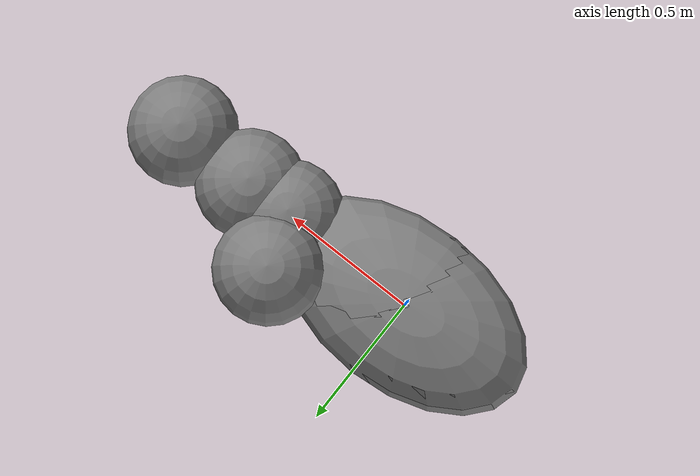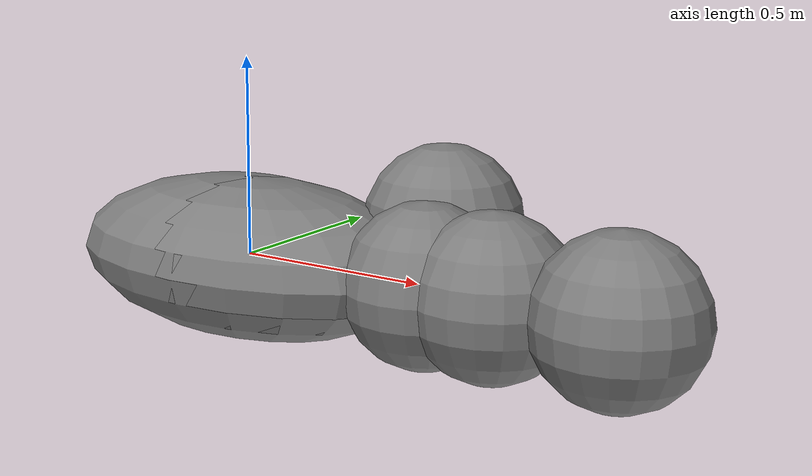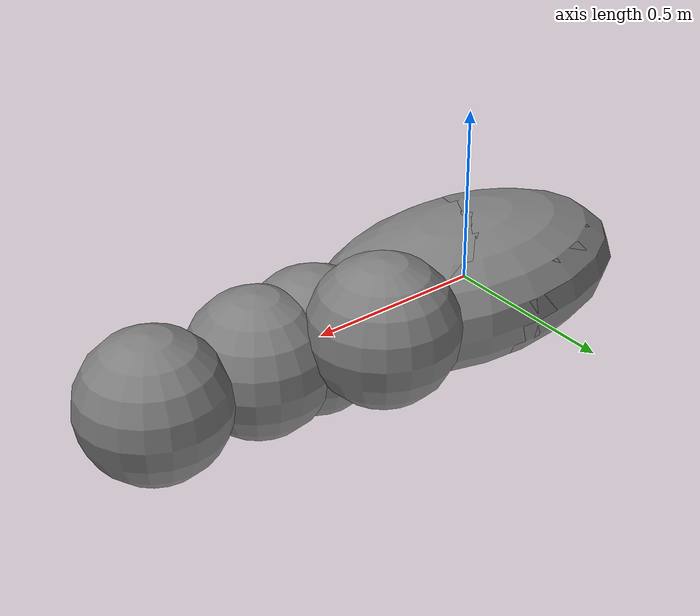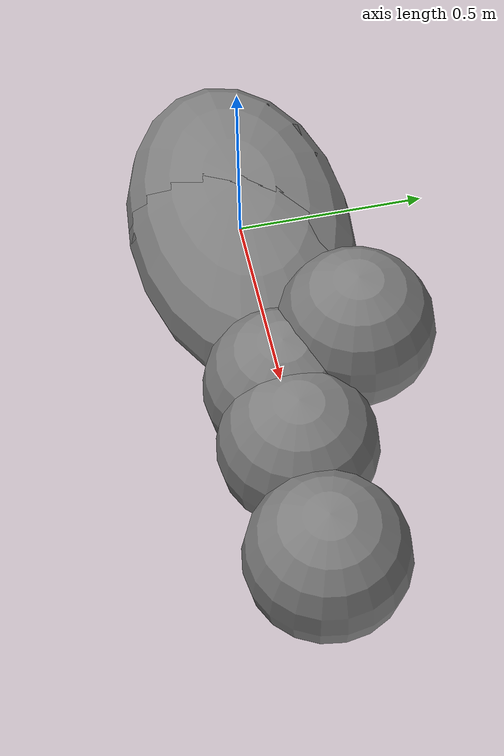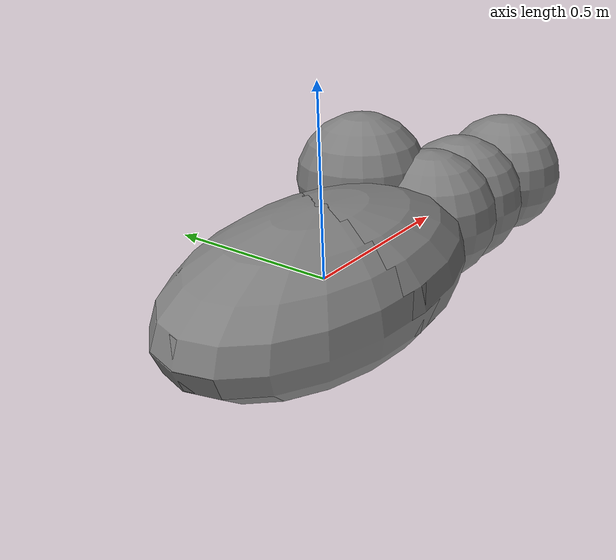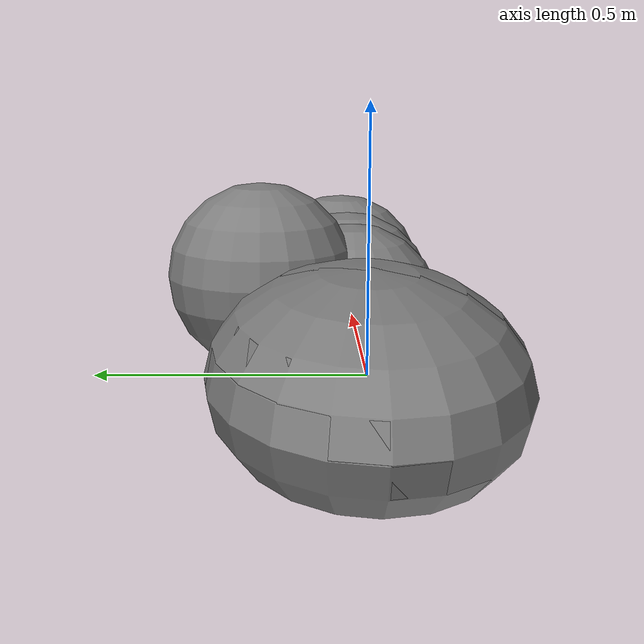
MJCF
<mujoco model="contact_route_sphere_ellipsoid">
  <option gravity="0 0 0"/>
  <contact>
    <pair geom1="sphere_no_contact" geom2="ellipsoid_no_contact"/>
    <pair geom1="sphere_shallow" geom2="ellipsoid_shallow"/>
    <pair geom1="sphere_deep" geom2="ellipsoid_deep"/>
    <pair geom1="sphere_off_axis" geom2="ellipsoid_off_axis"/>
  </contact>
  <worldbody>
    <body name="sphere_no_contact" pos="1 0 0">
      <freejoint/>
      <inertial pos="0 0 0" mass="1" diaginertia="1 1 1"/>
      <geom name="sphere_no_contact" type="sphere" size="0.2"/>
    </body>
    <body name="ellipsoid_no_contact">
      <freejoint/>
      <inertial pos="0 0 0" mass="1" diaginertia="1 1 1"/>
      <geom name="ellipsoid_no_contact" type="ellipsoid" size="0.5 0.3 0.2"/>
    </body>
    <body name="sphere_shallow" pos="0.695 0 0">
      <freejoint/>
      <inertial pos="0 0 0" mass="1" diaginertia="1 1 1"/>
      <geom name="sphere_shallow" type="sphere" size="0.2"/>
    </body>
    <body name="ellipsoid_shallow">
      <freejoint/>
      <inertial pos="0 0 0" mass="1" diaginertia="1 1 1"/>
      <geom name="ellipsoid_shallow" type="ellipsoid" size="0.5 0.3 0.2"/>
    </body>
    <body name="sphere_deep" pos="0.52 0 0">
      <freejoint/>
      <inertial pos="0 0 0" mass="1" diaginertia="1 1 1"/>
      <geom name="sphere_deep" type="sphere" size="0.2"/>
    </body>
    <body name="ellipsoid_deep">
      <freejoint/>
      <inertial pos="0 0 0" mass="1" diaginertia="1 1 1"/>
      <geom name="ellipsoid_deep" type="ellipsoid" size="0.5 0.3 0.2"/>
    </body>
    <body name="sphere_off_axis" pos="0.45 0.2 0.1">
      <freejoint/>
      <inertial pos="0 0 0" mass="1" diaginertia="1 1 1"/>
      <geom name="sphere_off_axis" type="sphere" size="0.2"/>
    </body>
    <body name="ellipsoid_off_axis" euler="0.2 0.3 0.4">
      <freejoint/>
      <inertial pos="0 0 0" mass="1" diaginertia="1 1 1"/>
      <geom name="ellipsoid_off_axis" type="ellipsoid" size="0.5 0.3 0.2"/>
    </body>
  </worldbody>
</mujoco>
